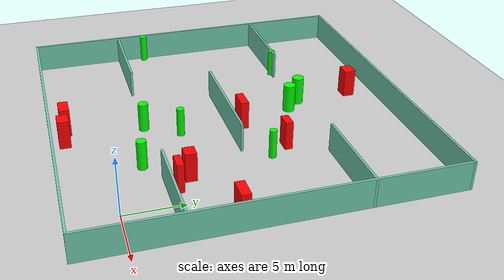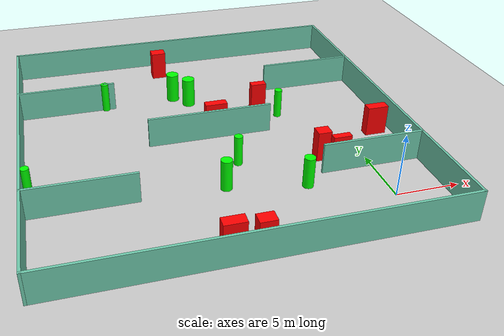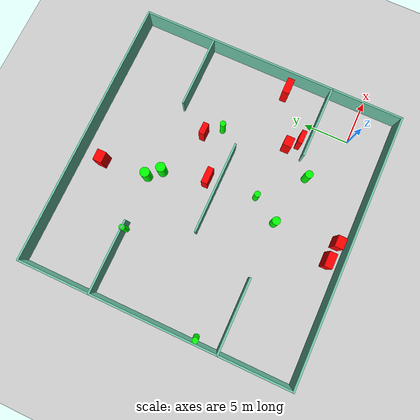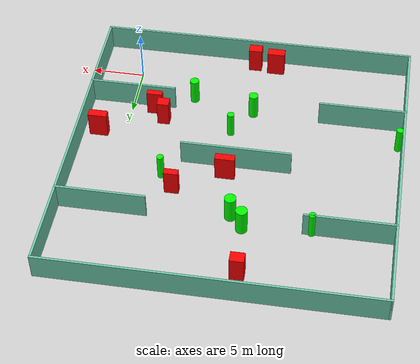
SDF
<sdf version="1.7">
 <world name="default">
  <light name="sun" type="directional">
   <pose>0 0 10 0 -0 0</pose>
   <diffuse>0.8 0.8 0.8 1</diffuse>
   <specular>0.2 0.2 0.2 1</specular>
   <attenuation>
    <range>1000</range>
    <constant>0.9</constant>
    <linear>0.01</linear>
    <quadratic>0.001</quadratic>
   </attenuation>
   <direction>-0.5 0.1 -0.9</direction>
   <spot><inner_angle>0</inner_angle><outer_angle>0</outer_angle><falloff>0</falloff></spot>
  </light>
  <model name="ground_plane">
   <static>1</static>
   <link name="link">
    <collision name="collision">
     <geometry><plane><normal>0 0 1</normal><size>100 100</size></plane></geometry>
     <surface>
      <contact><collide_bitmask>65535</collide_bitmask></contact>
      <friction><ode><mu>100</mu><mu2>50</mu2></ode></friction>
     </surface>
    </collision>
    <visual name="visual">
     <cast_shadows>0</cast_shadows>
     <geometry><plane><normal>0 0 1</normal><size>100 100</size></plane></geometry>
     <material>
      <script><uri>file://media/materials/scripts/gazebo.material</uri><name>Gazebo/Grey</name></script>
     </material>
    </visual>
   </link>
  </model>
  <gravity>0 0 -9.8</gravity>
  <magnetic_field>6e-06 2.3e-05 -4.2e-05</magnetic_field>
  <atmosphere type="adiabatic"/>
  <physics type="ode">
   <max_step_size>0.001</max_step_size>
   <real_time_factor>1</real_time_factor>
   <real_time_update_rate>1000</real_time_update_rate>
  </physics>
  <scene><ambient>0.4 0.4 0.4 1</ambient><background>0.7 0.7 0.7 1</background><shadows>1</shadows></scene>
  <spherical_coordinates>
   <surface_model>EARTH_WGS84</surface_model>
   <latitude_deg>0</latitude_deg>
   <longitude_deg>0</longitude_deg>
   <elevation>0</elevation>
   <heading_deg>0</heading_deg>
  </spherical_coordinates>
  <model name="my_base_walls">
   <link name="Wall_10">
    <collision name="Wall_10_Collision">
     <geometry><box><size>8.2 0.2 2.5</size></box></geometry>
     <pose>0 0 1.25 0 -0 0</pose>
    </collision>
    <visual name="Wall_10_Visual">
     <pose>0 0 1.25 0 -0 0</pose>
     <geometry><box><size>8.2 0.2 2.5</size></box></geometry>
     <material>
      <script><uri>file://media/materials/scripts/gazebo.material</uri><name>Gazebo/Grey</name></script>
      <ambient>0.435294 0.796078 0.67451 1</ambient>
     </material>
     <meta><layer>0</layer></meta>
    </visual>
    <pose>-11 -7 0 0 -0 0</pose>
   </link>
   <link name="Wall_12">
    <collision name="Wall_12_Collision">
     <geometry><box><size>8.2 0.2 2.5</size></box></geometry>
     <pose>0 0 1.25 0 -0 0</pose>
    </collision>
    <visual name="Wall_12_Visual">
     <pose>0 0 1.25 0 -0 0</pose>
     <geometry><box><size>8.2 0.2 2.5</size></box></geometry>
     <material>
      <script><uri>file://media/materials/scripts/gazebo.material</uri><name>Gazebo/Grey</name></script>
      <ambient>0.435294 0.796078 0.67451 1</ambient>
     </material>
     <meta><layer>0</layer></meta>
    </visual>
    <pose>-11 7 0 0 -0 0</pose>
   </link>
   <link name="Wall_14">
    <collision name="Wall_14_Collision">
     <geometry><box><size>8.2 0.2 2.5</size></box></geometry>
     <pose>0 0 1.25 0 -0 0</pose>
    </collision>
    <visual name="Wall_14_Visual">
     <pose>0 0 1.25 0 -0 0</pose>
     <geometry><box><size>8.2 0.2 2.5</size></box></geometry>
     <material>
      <script><uri>file://media/materials/scripts/gazebo.material</uri><name>Gazebo/Grey</name></script>
      <ambient>0.435294 0.796078 0.67451 1</ambient>
     </material>
     <meta><layer>0</layer></meta>
    </visual>
    <pose>11 7 0 0 -0 3.14159</pose>
   </link>
   <link name="Wall_16">
    <collision name="Wall_16_Collision">
     <geometry><box><size>10.2 0.2 2.5</size></box></geometry>
     <pose>0 0 1.25 0 -0 0</pose>
    </collision>
    <visual name="Wall_16_Visual">
     <pose>0 0 1.25 0 -0 0</pose>
     <geometry><box><size>10.2 0.2 2.5</size></box></geometry>
     <material>
      <script><uri>file://media/materials/scripts/gazebo.material</uri><name>Gazebo/Grey</name></script>
      <ambient>0.435294 0.796078 0.67451 1</ambient>
     </material>
     <meta><layer>0</layer></meta>
    </visual>
    <pose>0 0 0 0 -0 3.14159</pose>
   </link>
   <link name="Wall_2">
    <collision name="Wall_2_Collision">
     <geometry><box><size>30.2 0.2 2.5</size></box></geometry>
     <pose>0 0 1.25 0 -0 0</pose>
    </collision>
    <visual name="Wall_2_Visual">
     <pose>0 0 1.25 0 -0 0</pose>
     <geometry><box><size>30.2 0.2 2.5</size></box></geometry>
     <material>
      <script><uri>file://media/materials/scripts/gazebo.material</uri><name>Gazebo/Grey</name></script>
      <ambient>0.435294 0.796078 0.67451 1</ambient>
     </material>
     <meta><layer>0</layer></meta>
    </visual>
    <pose>0 -15 0 0 -0 3.14159</pose>
   </link>
   <link name="Wall_3">
    <collision name="Wall_3_Collision">
     <geometry><box><size>30.2 0.2 2.5</size></box></geometry>
     <pose>0 0 1.25 0 -0 0</pose>
    </collision>
    <visual name="Wall_3_Visual">
     <pose>0 0 1.25 0 -0 0</pose>
     <geometry><box><size>30.2 0.2 2.5</size></box></geometry>
     <material>
      <script><uri>file://media/materials/scripts/gazebo.material</uri><name>Gazebo/Grey</name></script>
      <ambient>0.435294 0.796078 0.67451 1</ambient>
     </material>
     <meta><layer>0</layer></meta>
    </visual>
    <pose>-15 0 0 0 -0 1.5708</pose>
   </link>
   <link name="Wall_4">
    <collision name="Wall_4_Collision">
     <geometry><box><size>30.2 0.2 2.5</size></box></geometry>
     <pose>0 0 1.25 0 -0 0</pose>
    </collision>
    <visual name="Wall_4_Visual">
     <pose>0 0 1.25 0 -0 0</pose>
     <geometry><box><size>30.2 0.2 2.5</size></box></geometry>
     <material>
      <script><uri>file://media/materials/scripts/gazebo.material</uri><name>Gazebo/Grey</name></script>
      <ambient>0.435294 0.796078 0.67451 1</ambient>
     </material>
     <meta><layer>0</layer></meta>
    </visual>
    <pose>0 15 0 0 -0 0</pose>
   </link>
   <link name="Wall_6">
    <collision name="Wall_6_Collision">
     <geometry><box><size>30.2 0.2 2.5</size></box></geometry>
     <pose>0 0 1.25 0 -0 0</pose>
    </collision>
    <visual name="Wall_6_Visual">
     <pose>0 0 1.25 0 -0 0</pose>
     <geometry><box><size>30.2 0.2 2.5</size></box></geometry>
     <material>
      <script><uri>file://media/materials/scripts/gazebo.material</uri><name>Gazebo/Grey</name></script>
      <ambient>0.435294 0.796078 0.67451 1</ambient>
     </material>
     <meta><layer>0</layer></meta>
    </visual>
    <pose>15 0 0 0 -0 1.5708</pose>
   </link>
   <link name="Wall_8">
    <collision name="Wall_8_Collision">
     <geometry><box><size>8.2 0.2 2.5</size></box></geometry>
     <pose>0 0 1.25 0 -0 0</pose>
    </collision>
    <visual name="Wall_8_Visual">
     <pose>0 0 1.25 0 -0 0</pose>
     <geometry><box><size>8.2 0.2 2.5</size></box></geometry>
     <material>
      <script><uri>file://media/materials/scripts/gazebo.material</uri><name>Gazebo/Grey</name></script>
      <ambient>0.435294 0.796078 0.67451 1</ambient>
     </material>
     <meta><layer>0</layer></meta>
    </visual>
    <pose>11 -7 0 0 -0 3.14159</pose>
   </link>
   <static>1</static>
   <pose>-11 11 0 0 -0 0</pose>
  </model>
  <model name="cylinder1">
   <static>1</static>
   <link name="link">
    <inertial>
     <mass>1</mass>
     <inertia><ixx>0.5</ixx><ixy>0</ixy><ixz>0</ixz><iyy>0.5</iyy><iyz>0</iyz><izz>1</izz></inertia>
    </inertial>
    <collision name="collision">
     <geometry><cylinder><radius>0.32452284575613627</radius><length>2.5</length></cylinder></geometry>
    </collision>
    <visual name="visual">
     <geometry><cylinder><radius>0.32452284575613627</radius><length>2.5</length></cylinder></geometry>
     <material>
      <ambient>0 1 0 1</ambient>
      <diffuse>0 1 0 1</diffuse>
      <specular>0.1 0.1 0.1 1</specular>
      <emissive>0 0 0 0</emissive>
     </material>
    </visual>
   </link>
   <pose>-25.61174771692596 6.517421309754216 1.25 0 0 0</pose>
  </model>
  <model name="cylinder2">
   <static>1</static>
   <link name="link">
    <inertial>
     <mass>1</mass>
     <inertia><ixx>0.5</ixx><ixy>0</ixy><ixz>0</ixz><iyy>0.5</iyy><iyz>0</iyz><izz>1</izz></inertia>
    </inertial>
    <collision name="collision">
     <geometry><cylinder><radius>0.3313544034721364</radius><length>2.5</length></cylinder></geometry>
    </collision>
    <visual name="visual">
     <geometry><cylinder><radius>0.3313544034721364</radius><length>2.5</length></cylinder></geometry>
     <material>
      <ambient>0 1 0 1</ambient>
      <diffuse>0 1 0 1</diffuse>
      <specular>0.1 0.1 0.1 1</specular>
      <emissive>0 0 0 0</emissive>
     </material>
    </visual>
   </link>
   <pose>-9.887600653963048 6.7716026255638155 1.25 0 0 0</pose>
  </model>
  <model name="cylinder3">
   <static>1</static>
   <link name="link">
    <inertial>
     <mass>1</mass>
     <inertia><ixx>0.5</ixx><ixy>0</ixy><ixz>0</ixz><iyy>0.5</iyy><iyz>0</iyz><izz>1</izz></inertia>
    </inertial>
    <collision name="collision">
     <geometry><cylinder><radius>0.42247538816479585</radius><length>2.5</length></cylinder></geometry>
    </collision>
    <visual name="visual">
     <geometry><cylinder><radius>0.42247538816479585</radius><length>2.5</length></cylinder></geometry>
     <material>
      <ambient>0 1 0 1</ambient>
      <diffuse>0 1 0 1</diffuse>
      <specular>0.1 0.1 0.1 1</specular>
      <emissive>0 0 0 0</emissive>
     </material>
    </visual>
   </link>
   <pose>-5.745496784719316 2.6913902287958997 1.25 0 0 0</pose>
  </model>
  <model name="cylinder4">
   <static>1</static>
   <link name="link">
    <inertial>
     <mass>1</mass>
     <inertia><ixx>0.5</ixx><ixy>0</ixy><ixz>0</ixz><iyy>0.5</iyy><iyz>0</iyz><izz>1</izz></inertia>
    </inertial>
    <collision name="collision">
     <geometry><cylinder><radius>0.5295828542882616</radius><length>2.5</length></cylinder></geometry>
    </collision>
    <visual name="visual">
     <geometry><cylinder><radius>0.5295828542882616</radius><length>2.5</length></cylinder></geometry>
     <material>
      <ambient>0 1 0 1</ambient>
      <diffuse>0 1 0 1</diffuse>
      <specular>0.1 0.1 0.1 1</specular>
      <emissive>0 0 0 0</emissive>
     </material>
    </visual>
   </link>
   <pose>-12.623549031292827 18.379576812858758 1.25 0 0 0</pose>
  </model>
  <model name="cylinder5">
   <static>1</static>
   <link name="link">
    <inertial>
     <mass>1</mass>
     <inertia><ixx>0.5</ixx><ixy>0</ixy><ixz>0</ixz><iyy>0.5</iyy><iyz>0</iyz><izz>1</izz></inertia>
    </inertial>
    <collision name="collision">
     <geometry><cylinder><radius>0.44174903983880875</radius><length>2.5</length></cylinder></geometry>
    </collision>
    <visual name="visual">
     <geometry><cylinder><radius>0.44174903983880875</radius><length>2.5</length></cylinder></geometry>
     <material>
      <ambient>0 1 0 1</ambient>
      <diffuse>0 1 0 1</diffuse>
      <specular>0.1 0.1 0.1 1</specular>
      <emissive>0 0 0 0</emissive>
     </material>
    </visual>
   </link>
   <pose>-11.630614975628905 3.9097860771000708 1.25 0 0 0</pose>
  </model>
  <model name="cylinder6">
   <static>1</static>
   <link name="link">
    <inertial>
     <mass>1</mass>
     <inertia><ixx>0.5</ixx><ixy>0</ixy><ixz>0</ixz><iyy>0.5</iyy><iyz>0</iyz><izz>1</izz></inertia>
    </inertial>
    <collision name="collision">
     <geometry><cylinder><radius>0.3162613177684896</radius><length>2.5</length></cylinder></geometry>
    </collision>
    <visual name="visual">
     <geometry><cylinder><radius>0.3162613177684896</radius><length>2.5</length></cylinder></geometry>
     <material>
      <ambient>0 1 0 1</ambient>
      <diffuse>0 1 0 1</diffuse>
      <specular>0.1 0.1 0.1 1</specular>
      <emissive>0 0 0 0</emissive>
     </material>
    </visual>
   </link>
   <pose>-4.4385374110227005 13.123189544447904 1.25 0 0 0</pose>
  </model>
  <model name="cylinder7">
   <static>1</static>
   <link name="link">
    <inertial>
     <mass>1</mass>
     <inertia><ixx>0.5</ixx><ixy>0</ixy><ixz>0</ixz><iyy>0.5</iyy><iyz>0</iyz><izz>1</izz></inertia>
    </inertial>
    <collision name="collision">
     <geometry><cylinder><radius>0.3208587109244477</radius><length>2.5</length></cylinder></geometry>
    </collision>
    <visual name="visual">
     <geometry><cylinder><radius>0.3208587109244477</radius><length>2.5</length></cylinder></geometry>
     <material>
      <ambient>0 1 0 1</ambient>
      <diffuse>0 1 0 1</diffuse>
      <specular>0.1 0.1 0.1 1</specular>
      <emissive>0 0 0 0</emissive>
     </material>
    </visual>
   </link>
   <pose>-18.72832566578118 17.955957957222235 1.25 0 0 0</pose>
  </model>
  <model name="cylinder8">
   <static>1</static>
   <link name="link">
    <inertial>
     <mass>1</mass>
     <inertia><ixx>0.5</ixx><ixy>0</ixy><ixz>0</ixz><iyy>0.5</iyy><iyz>0</iyz><izz>1</izz></inertia>
    </inertial>
    <collision name="collision">
     <geometry><cylinder><radius>0.5338100136299789</radius><length>2.5</length></cylinder></geometry>
    </collision>
    <visual name="visual">
     <geometry><cylinder><radius>0.5338100136299789</radius><length>2.5</length></cylinder></geometry>
     <material>
      <ambient>0 1 0 1</ambient>
      <diffuse>0 1 0 1</diffuse>
      <specular>0.1 0.1 0.1 1</specular>
      <emissive>0 0 0 0</emissive>
     </material>
    </visual>
   </link>
   <pose>-11.448991833316704 17.118038630110604 1.25 0 0 0</pose>
  </model>
  <model name="box1">
   <static>1</static>
   <link name="link">
    <inertial>
     <mass>1</mass>
     <inertia><ixx>0.083</ixx><ixy>0</ixy><ixz>0</ixz><iyy>0.083</iyy><iyz>0</iyz><izz>0.083</izz></inertia>
    </inertial>
    <collision name="collision">
     <geometry><box><size>1.1115300264790022 0.9599985287834866 2.5</size></box></geometry>
    </collision>
    <visual name="visual">
     <geometry><box><size>1.1115300264790022 0.9599985287834866 2.5</size></box></geometry>
     <material>
      <ambient>1 0 0 1</ambient>
      <diffuse>1 0 0 1</diffuse>
      <specular>0.1 0.1 0.1 1</specular>
      <emissive>0 0 0 0</emissive>
     </material>
    </visual>
    <sensor name="my_contact" type="contact">
     <contact><collision>box_collision</collision><topic>__default_topic__</topic></contact>
    </sensor>
   </link>
   <pose>-3.334981371215534 5.970277442205452 1.25 0 0 0</pose>
  </model>
  <model name="box2">
   <static>1</static>
   <link name="link">
    <inertial>
     <mass>1</mass>
     <inertia><ixx>0.083</ixx><ixy>0</ixy><ixz>0</ixz><iyy>0.083</iyy><iyz>0</iyz><izz>0.083</izz></inertia>
    </inertial>
    <collision name="collision">
     <geometry><box><size>1.7403967039500237 0.777567752360073 2.5</size></box></geometry>
    </collision>
    <visual name="visual">
     <geometry><box><size>1.7403967039500237 0.777567752360073 2.5</size></box></geometry>
     <material>
      <ambient>1 0 0 1</ambient>
      <diffuse>1 0 0 1</diffuse>
      <specular>0.1 0.1 0.1 1</specular>
      <emissive>0 0 0 0</emissive>
     </material>
    </visual>
    <sensor name="my_contact" type="contact">
     <contact><collision>box_collision</collision><topic>__default_topic__</topic></contact>
    </sensor>
   </link>
   <pose>2.4093603153743004 8.444441678534806 1.25 0 0 0</pose>
  </model>
  <model name="box3">
   <static>1</static>
   <link name="link">
    <inertial>
     <mass>1</mass>
     <inertia><ixx>0.083</ixx><ixy>0</ixy><ixz>0</ixz><iyy>0.083</iyy><iyz>0</iyz><izz>0.083</izz></inertia>
    </inertial>
    <collision name="collision">
     <geometry><box><size>1.8129347518647023 0.6945384126211703 2.5</size></box></geometry>
    </collision>
    <visual name="visual">
     <geometry><box><size>1.8129347518647023 0.6945384126211703 2.5</size></box></geometry>
     <material>
      <ambient>1 0 0 1</ambient>
      <diffuse>1 0 0 1</diffuse>
      <specular>0.1 0.1 0.1 1</specular>
      <emissive>0 0 0 0</emissive>
     </material>
    </visual>
    <sensor name="my_contact" type="contact">
     <contact><collision>box_collision</collision><topic>__default_topic__</topic></contact>
    </sensor>
   </link>
   <pose>-10.207396991154164 12.290469233047862 1.25 0 0 0</pose>
  </model>
  <model name="box4">
   <static>1</static>
   <link name="link">
    <inertial>
     <mass>1</mass>
     <inertia><ixx>0.083</ixx><ixy>0</ixy><ixz>0</ixz><iyy>0.083</iyy><iyz>0</iyz><izz>0.083</izz></inertia>
    </inertial>
    <collision name="collision">
     <geometry><box><size>1.3054121356375323 0.6387439003123555 2.5</size></box></geometry>
    </collision>
    <visual name="visual">
     <geometry><box><size>1.3054121356375323 0.6387439003123555 2.5</size></box></geometry>
     <material>
      <ambient>1 0 0 1</ambient>
      <diffuse>1 0 0 1</diffuse>
      <specular>0.1 0.1 0.1 1</specular>
      <emissive>0 0 0 0</emissive>
     </material>
    </visual>
    <sensor name="my_contact" type="contact">
     <contact><collision>box_collision</collision><topic>__default_topic__</topic></contact>
    </sensor>
   </link>
   <pose>-5.747256405742231 14.774164264245552 1.25 0 0 0</pose>
  </model>
  <model name="box5">
   <static>1</static>
   <link name="link">
    <inertial>
     <mass>1</mass>
     <inertia><ixx>0.083</ixx><ixy>0</ixy><ixz>0</ixz><iyy>0.083</iyy><iyz>0</iyz><izz>0.083</izz></inertia>
    </inertial>
    <collision name="collision">
     <geometry><box><size>1.6511249814633044 0.8630702719974335 2.5</size></box></geometry>
    </collision>
    <visual name="visual">
     <geometry><box><size>1.6511249814633044 0.8630702719974335 2.5</size></box></geometry>
     <material>
      <ambient>1 0 0 1</ambient>
      <diffuse>1 0 0 1</diffuse>
      <specular>0.1 0.1 0.1 1</specular>
      <emissive>0 0 0 0</emissive>
     </material>
    </visual>
    <sensor name="my_contact" type="contact">
     <contact><collision>box_collision</collision><topic>__default_topic__</topic></contact>
    </sensor>
   </link>
   <pose>-12.999028888191754 -2.6331297593170815 1.25 0 0 0</pose>
  </model>
  <model name="box6">
   <static>1</static>
   <link name="link">
    <inertial>
     <mass>1</mass>
     <inertia><ixx>0.083</ixx><ixy>0</ixy><ixz>0</ixz><iyy>0.083</iyy><iyz>0</iyz><izz>0.083</izz></inertia>
    </inertial>
    <collision name="collision">
     <geometry><box><size>1.4689793777654652 0.5531312936241151 2.5</size></box></geometry>
    </collision>
    <visual name="visual">
     <geometry><box><size>1.4689793777654652 0.5531312936241151 2.5</size></box></geometry>
     <material>
      <ambient>1 0 0 1</ambient>
      <diffuse>1 0 0 1</diffuse>
      <specular>0.1 0.1 0.1 1</specular>
      <emissive>0 0 0 0</emissive>
     </material>
    </visual>
    <sensor name="my_contact" type="contact">
     <contact><collision>box_collision</collision><topic>__default_topic__</topic></contact>
    </sensor>
   </link>
   <pose>-2.2723058345766702 4.883622492567783 1.25 0 0 0</pose>
  </model>
  <model name="box7">
   <static>1</static>
   <link name="link">
    <inertial>
     <mass>1</mass>
     <inertia><ixx>0.083</ixx><ixy>0</ixy><ixz>0</ixz><iyy>0.083</iyy><iyz>0</iyz><izz>0.083</izz></inertia>
    </inertial>
    <collision name="collision">
     <geometry><box><size>1.2638888594036009 1.0094090720760427 2.5</size></box></geometry>
    </collision>
    <visual name="visual">
     <geometry><box><size>1.2638888594036009 1.0094090720760427 2.5</size></box></geometry>
     <material>
      <ambient>1 0 0 1</ambient>
      <diffuse>1 0 0 1</diffuse>
      <specular>0.1 0.1 0.1 1</specular>
      <emissive>0 0 0 0</emissive>
     </material>
    </visual>
    <sensor name="my_contact" type="contact">
     <contact><collision>box_collision</collision><topic>__default_topic__</topic></contact>
    </sensor>
   </link>
   <pose>-13.018949422469827 23.455005801289968 1.25 0 0 0</pose>
  </model>
  <model name="box8">
   <static>1</static>
   <link name="link">
    <inertial>
     <mass>1</mass>
     <inertia><ixx>0.083</ixx><ixy>0</ixy><ixz>0</ixz><iyy>0.083</iyy><iyz>0</iyz><izz>0.083</izz></inertia>
    </inertial>
    <collision name="collision">
     <geometry><box><size>1.2528735327877247 0.953106541197467 2.5</size></box></geometry>
    </collision>
    <visual name="visual">
     <geometry><box><size>1.2528735327877247 0.953106541197467 2.5</size></box></geometry>
     <material>
      <ambient>1 0 0 1</ambient>
      <diffuse>1 0 0 1</diffuse>
      <specular>0.1 0.1 0.1 1</specular>
      <emissive>0 0 0 0</emissive>
     </material>
    </visual>
    <sensor name="my_contact" type="contact">
     <contact><collision>box_collision</collision><topic>__default_topic__</topic></contact>
    </sensor>
   </link>
   <pose>-10.922156918086067 -2.898425105458622 1.25 0 0 0</pose>
  </model>
 </world>
</sdf>
